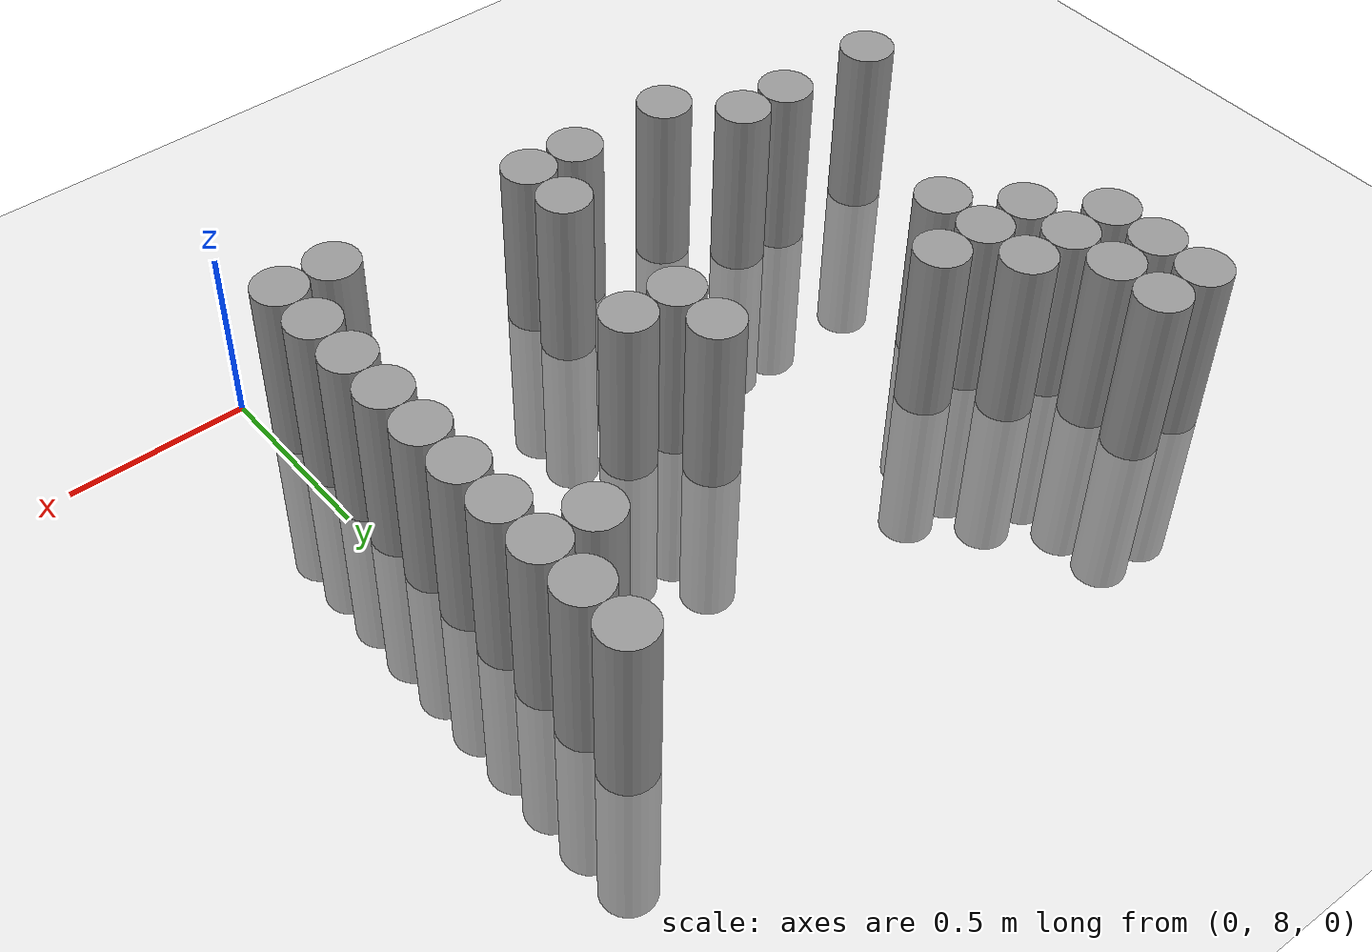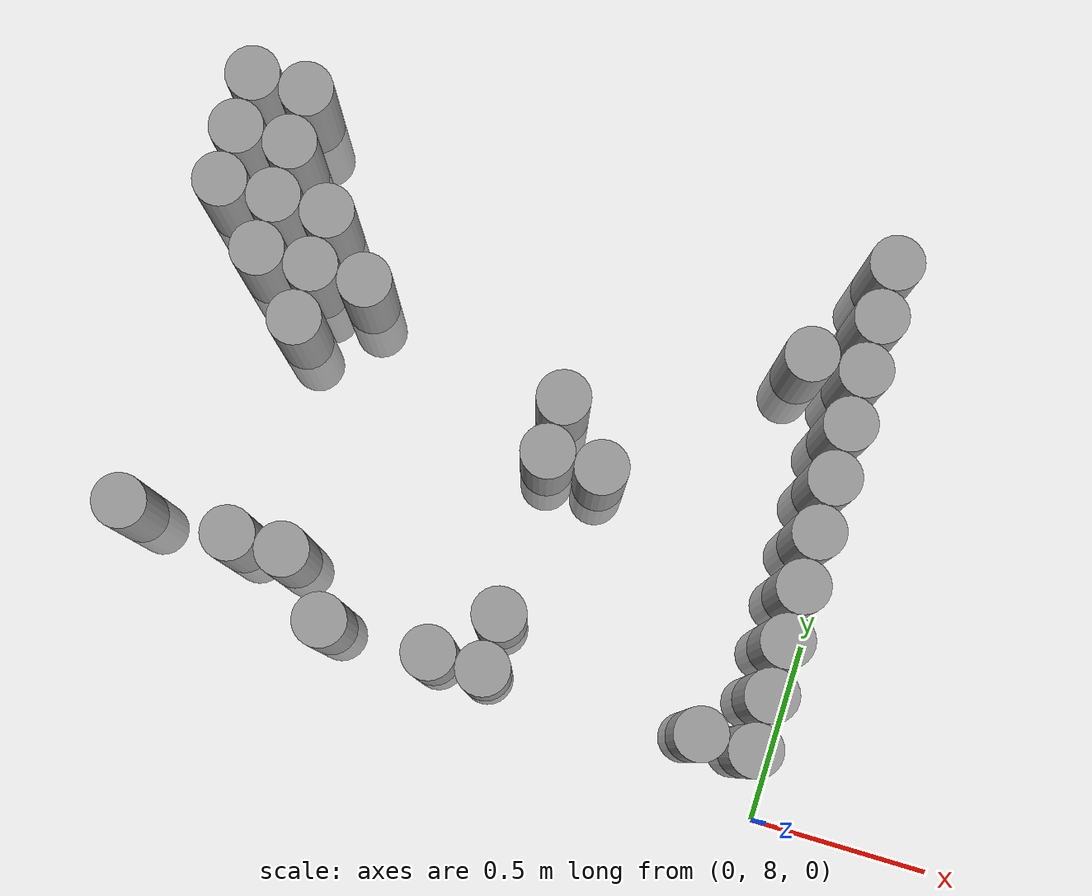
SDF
<sdf version="1.6">
 <world name="default">
  <model name="ground_plane">
   <static>1</static>
   <link name="link">
    <collision name="collision">
     <geometry><plane><normal>0 0 1</normal><size>100 100</size></plane></geometry>
     <surface><friction><ode><mu>100</mu><mu2>50</mu2></ode></friction></surface>
    </collision>
    <visual name="visual">
     <cast_shadows>0</cast_shadows>
     <geometry><plane><normal>0 0 1</normal><size>100 100</size></plane></geometry>
     <material>
      <script><uri>file://media/materials/scripts/gazebo.material</uri><name>Gazebo/Grey</name></script>
     </material>
    </visual>
   </link>
  </model>
  <model name="unit_cylinder_183">
   <pose>-1.875000 8.325000 0.000000 0.000000 0.000000 0.000000</pose>
   <link name="link">
    <inertial>
     <mass>1</mass>
     <inertia><ixx>0.145833</ixx><ixy>0</ixy><ixz>0</ixz><iyy>0.145833</iyy><iyz>0</iyz><izz>0.125</izz></inertia>
    </inertial>
    <collision name="collision">
     <geometry><cylinder><radius>0.075000</radius><length>1</length></cylinder></geometry>
    </collision>
    <visual name="visual">
     <geometry><cylinder><radius>0.075000</radius><length>1</length></cylinder></geometry>
     <material>
      <script><name>Gazebo/Grey</name><uri>file://media/materials/scripts/gazebo.material</uri></script>
     </material>
    </visual>
   </link>
  </model>
  <model name="unit_cylinder_184">
   <pose>-1.875000 9.225000 0.000000 0.000000 0.000000 0.000000</pose>
   <link name="link">
    <inertial>
     <mass>1</mass>
     <inertia><ixx>0.145833</ixx><ixy>0</ixy><ixz>0</ixz><iyy>0.145833</iyy><iyz>0</iyz><izz>0.125</izz></inertia>
    </inertial>
    <collision name="collision">
     <geometry><cylinder><radius>0.075000</radius><length>1</length></cylinder></geometry>
    </collision>
    <visual name="visual">
     <geometry><cylinder><radius>0.075000</radius><length>1</length></cylinder></geometry>
     <material>
      <script><name>Gazebo/Grey</name><uri>file://media/materials/scripts/gazebo.material</uri></script>
     </material>
    </visual>
   </link>
  </model>
  <model name="unit_cylinder_185">
   <pose>-1.875000 9.375000 0.000000 0.000000 0.000000 0.000000</pose>
   <link name="link">
    <inertial>
     <mass>1</mass>
     <inertia><ixx>0.145833</ixx><ixy>0</ixy><ixz>0</ixz><iyy>0.145833</iyy><iyz>0</iyz><izz>0.125</izz></inertia>
    </inertial>
    <collision name="collision">
     <geometry><cylinder><radius>0.075000</radius><length>1</length></cylinder></geometry>
    </collision>
    <visual name="visual">
     <geometry><cylinder><radius>0.075000</radius><length>1</length></cylinder></geometry>
     <material>
      <script><name>Gazebo/Grey</name><uri>file://media/materials/scripts/gazebo.material</uri></script>
     </material>
    </visual>
   </link>
  </model>
  <model name="unit_cylinder_186">
   <pose>-1.875000 9.525000 0.000000 0.000000 0.000000 0.000000</pose>
   <link name="link">
    <inertial>
     <mass>1</mass>
     <inertia><ixx>0.145833</ixx><ixy>0</ixy><ixz>0</ixz><iyy>0.145833</iyy><iyz>0</iyz><izz>0.125</izz></inertia>
    </inertial>
    <collision name="collision">
     <geometry><cylinder><radius>0.075000</radius><length>1</length></cylinder></geometry>
    </collision>
    <visual name="visual">
     <geometry><cylinder><radius>0.075000</radius><length>1</length></cylinder></geometry>
     <material>
      <script><name>Gazebo/Grey</name><uri>file://media/materials/scripts/gazebo.material</uri></script>
     </material>
    </visual>
   </link>
  </model>
  <model name="unit_cylinder_190">
   <pose>-1.725000 9.075000 0.000000 0.000000 0.000000 0.000000</pose>
   <link name="link">
    <inertial>
     <mass>1</mass>
     <inertia><ixx>0.145833</ixx><ixy>0</ixy><ixz>0</ixz><iyy>0.145833</iyy><iyz>0</iyz><izz>0.125</izz></inertia>
    </inertial>
    <collision name="collision">
     <geometry><cylinder><radius>0.075000</radius><length>1</length></cylinder></geometry>
    </collision>
    <visual name="visual">
     <geometry><cylinder><radius>0.075000</radius><length>1</length></cylinder></geometry>
     <material>
      <script><name>Gazebo/Grey</name><uri>file://media/materials/scripts/gazebo.material</uri></script>
     </material>
    </visual>
   </link>
  </model>
  <model name="unit_cylinder_191">
   <pose>-1.725000 9.225000 0.000000 0.000000 0.000000 0.000000</pose>
   <link name="link">
    <inertial>
     <mass>1</mass>
     <inertia><ixx>0.145833</ixx><ixy>0</ixy><ixz>0</ixz><iyy>0.145833</iyy><iyz>0</iyz><izz>0.125</izz></inertia>
    </inertial>
    <collision name="collision">
     <geometry><cylinder><radius>0.075000</radius><length>1</length></cylinder></geometry>
    </collision>
    <visual name="visual">
     <geometry><cylinder><radius>0.075000</radius><length>1</length></cylinder></geometry>
     <material>
      <script><name>Gazebo/Grey</name><uri>file://media/materials/scripts/gazebo.material</uri></script>
     </material>
    </visual>
   </link>
  </model>
  <model name="unit_cylinder_192">
   <pose>-1.725000 9.375000 0.000000 0.000000 0.000000 0.000000</pose>
   <link name="link">
    <inertial>
     <mass>1</mass>
     <inertia><ixx>0.145833</ixx><ixy>0</ixy><ixz>0</ixz><iyy>0.145833</iyy><iyz>0</iyz><izz>0.125</izz></inertia>
    </inertial>
    <collision name="collision">
     <geometry><cylinder><radius>0.075000</radius><length>1</length></cylinder></geometry>
    </collision>
    <visual name="visual">
     <geometry><cylinder><radius>0.075000</radius><length>1</length></cylinder></geometry>
     <material>
      <script><name>Gazebo/Grey</name><uri>file://media/materials/scripts/gazebo.material</uri></script>
     </material>
    </visual>
   </link>
  </model>
  <model name="unit_cylinder_193">
   <pose>-1.725000 9.525000 0.000000 0.000000 0.000000 0.000000</pose>
   <link name="link">
    <inertial>
     <mass>1</mass>
     <inertia><ixx>0.145833</ixx><ixy>0</ixy><ixz>0</ixz><iyy>0.145833</iyy><iyz>0</iyz><izz>0.125</izz></inertia>
    </inertial>
    <collision name="collision">
     <geometry><cylinder><radius>0.075000</radius><length>1</length></cylinder></geometry>
    </collision>
    <visual name="visual">
     <geometry><cylinder><radius>0.075000</radius><length>1</length></cylinder></geometry>
     <material>
      <script><name>Gazebo/Grey</name><uri>file://media/materials/scripts/gazebo.material</uri></script>
     </material>
    </visual>
   </link>
  </model>
  <model name="unit_cylinder_194">
   <pose>-1.575000 8.325000 0.000000 0.000000 0.000000 0.000000</pose>
   <link name="link">
    <inertial>
     <mass>1</mass>
     <inertia><ixx>0.145833</ixx><ixy>0</ixy><ixz>0</ixz><iyy>0.145833</iyy><iyz>0</iyz><izz>0.125</izz></inertia>
    </inertial>
    <collision name="collision">
     <geometry><cylinder><radius>0.075000</radius><length>1</length></cylinder></geometry>
    </collision>
    <visual name="visual">
     <geometry><cylinder><radius>0.075000</radius><length>1</length></cylinder></geometry>
     <material>
      <script><name>Gazebo/Grey</name><uri>file://media/materials/scripts/gazebo.material</uri></script>
     </material>
    </visual>
   </link>
  </model>
  <model name="unit_cylinder_195">
   <pose>-1.575000 8.925000 0.000000 0.000000 0.000000 0.000000</pose>
   <link name="link">
    <inertial>
     <mass>1</mass>
     <inertia><ixx>0.145833</ixx><ixy>0</ixy><ixz>0</ixz><iyy>0.145833</iyy><iyz>0</iyz><izz>0.125</izz></inertia>
    </inertial>
    <collision name="collision">
     <geometry><cylinder><radius>0.075000</radius><length>1</length></cylinder></geometry>
    </collision>
    <visual name="visual">
     <geometry><cylinder><radius>0.075000</radius><length>1</length></cylinder></geometry>
     <material>
      <script><name>Gazebo/Grey</name><uri>file://media/materials/scripts/gazebo.material</uri></script>
     </material>
    </visual>
   </link>
  </model>
  <model name="unit_cylinder_196">
   <pose>-1.575000 9.075000 0.000000 0.000000 0.000000 0.000000</pose>
   <link name="link">
    <inertial>
     <mass>1</mass>
     <inertia><ixx>0.145833</ixx><ixy>0</ixy><ixz>0</ixz><iyy>0.145833</iyy><iyz>0</iyz><izz>0.125</izz></inertia>
    </inertial>
    <collision name="collision">
     <geometry><cylinder><radius>0.075000</radius><length>1</length></cylinder></geometry>
    </collision>
    <visual name="visual">
     <geometry><cylinder><radius>0.075000</radius><length>1</length></cylinder></geometry>
     <material>
      <script><name>Gazebo/Grey</name><uri>file://media/materials/scripts/gazebo.material</uri></script>
     </material>
    </visual>
   </link>
  </model>
  <model name="unit_cylinder_197">
   <pose>-1.575000 9.225000 0.000000 0.000000 0.000000 0.000000</pose>
   <link name="link">
    <inertial>
     <mass>1</mass>
     <inertia><ixx>0.145833</ixx><ixy>0</ixy><ixz>0</ixz><iyy>0.145833</iyy><iyz>0</iyz><izz>0.125</izz></inertia>
    </inertial>
    <collision name="collision">
     <geometry><cylinder><radius>0.075000</radius><length>1</length></cylinder></geometry>
    </collision>
    <visual name="visual">
     <geometry><cylinder><radius>0.075000</radius><length>1</length></cylinder></geometry>
     <material>
      <script><name>Gazebo/Grey</name><uri>file://media/materials/scripts/gazebo.material</uri></script>
     </material>
    </visual>
   </link>
  </model>
  <model name="unit_cylinder_198">
   <pose>-1.425000 8.325000 0.000000 0.000000 0.000000 0.000000</pose>
   <link name="link">
    <inertial>
     <mass>1</mass>
     <inertia><ixx>0.145833</ixx><ixy>0</ixy><ixz>0</ixz><iyy>0.145833</iyy><iyz>0</iyz><izz>0.125</izz></inertia>
    </inertial>
    <collision name="collision">
     <geometry><cylinder><radius>0.075000</radius><length>1</length></cylinder></geometry>
    </collision>
    <visual name="visual">
     <geometry><cylinder><radius>0.075000</radius><length>1</length></cylinder></geometry>
     <material>
      <script><name>Gazebo/Grey</name><uri>file://media/materials/scripts/gazebo.material</uri></script>
     </material>
    </visual>
   </link>
  </model>
  <model name="unit_cylinder_199">
   <pose>-1.425000 9.075000 0.000000 0.000000 0.000000 0.000000</pose>
   <link name="link">
    <inertial>
     <mass>1</mass>
     <inertia><ixx>0.145833</ixx><ixy>0</ixy><ixz>0</ixz><iyy>0.145833</iyy><iyz>0</iyz><izz>0.125</izz></inertia>
    </inertial>
    <collision name="collision">
     <geometry><cylinder><radius>0.075000</radius><length>1</length></cylinder></geometry>
    </collision>
    <visual name="visual">
     <geometry><cylinder><radius>0.075000</radius><length>1</length></cylinder></geometry>
     <material>
      <script><name>Gazebo/Grey</name><uri>file://media/materials/scripts/gazebo.material</uri></script>
     </material>
    </visual>
   </link>
  </model>
  <model name="unit_cylinder_200">
   <pose>-1.275000 8.175000 0.000000 0.000000 0.000000 0.000000</pose>
   <link name="link">
    <inertial>
     <mass>1</mass>
     <inertia><ixx>0.145833</ixx><ixy>0</ixy><ixz>0</ixz><iyy>0.145833</iyy><iyz>0</iyz><izz>0.125</izz></inertia>
    </inertial>
    <collision name="collision">
     <geometry><cylinder><radius>0.075000</radius><length>1</length></cylinder></geometry>
    </collision>
    <visual name="visual">
     <geometry><cylinder><radius>0.075000</radius><length>1</length></cylinder></geometry>
     <material>
      <script><name>Gazebo/Grey</name><uri>file://media/materials/scripts/gazebo.material</uri></script>
     </material>
    </visual>
   </link>
  </model>
  <model name="unit_cylinder_204">
   <pose>-0.975000 8.175000 0.000000 0.000000 0.000000 0.000000</pose>
   <link name="link">
    <inertial>
     <mass>1</mass>
     <inertia><ixx>0.145833</ixx><ixy>0</ixy><ixz>0</ixz><iyy>0.145833</iyy><iyz>0</iyz><izz>0.125</izz></inertia>
    </inertial>
    <collision name="collision">
     <geometry><cylinder><radius>0.075000</radius><length>1</length></cylinder></geometry>
    </collision>
    <visual name="visual">
     <geometry><cylinder><radius>0.075000</radius><length>1</length></cylinder></geometry>
     <material>
      <script><name>Gazebo/Grey</name><uri>file://media/materials/scripts/gazebo.material</uri></script>
     </material>
    </visual>
   </link>
  </model>
  <model name="unit_cylinder_205">
   <pose>-0.825000 8.175000 0.000000 0.000000 0.000000 0.000000</pose>
   <link name="link">
    <inertial>
     <mass>1</mass>
     <inertia><ixx>0.145833</ixx><ixy>0</ixy><ixz>0</ixz><iyy>0.145833</iyy><iyz>0</iyz><izz>0.125</izz></inertia>
    </inertial>
    <collision name="collision">
     <geometry><cylinder><radius>0.075000</radius><length>1</length></cylinder></geometry>
    </collision>
    <visual name="visual">
     <geometry><cylinder><radius>0.075000</radius><length>1</length></cylinder></geometry>
     <material>
      <script><name>Gazebo/Grey</name><uri>file://media/materials/scripts/gazebo.material</uri></script>
     </material>
    </visual>
   </link>
  </model>
  <model name="unit_cylinder_206">
   <pose>-0.825000 8.325000 0.000000 0.000000 0.000000 0.000000</pose>
   <link name="link">
    <inertial>
     <mass>1</mass>
     <inertia><ixx>0.145833</ixx><ixy>0</ixy><ixz>0</ixz><iyy>0.145833</iyy><iyz>0</iyz><izz>0.125</izz></inertia>
    </inertial>
    <collision name="collision">
     <geometry><cylinder><radius>0.075000</radius><length>1</length></cylinder></geometry>
    </collision>
    <visual name="visual">
     <geometry><cylinder><radius>0.075000</radius><length>1</length></cylinder></geometry>
     <material>
      <script><name>Gazebo/Grey</name><uri>file://media/materials/scripts/gazebo.material</uri></script>
     </material>
    </visual>
   </link>
  </model>
  <model name="unit_cylinder_207">
   <pose>-0.825000 8.775000 0.000000 0.000000 0.000000 0.000000</pose>
   <link name="link">
    <inertial>
     <mass>1</mass>
     <inertia><ixx>0.145833</ixx><ixy>0</ixy><ixz>0</ixz><iyy>0.145833</iyy><iyz>0</iyz><izz>0.125</izz></inertia>
    </inertial>
    <collision name="collision">
     <geometry><cylinder><radius>0.075000</radius><length>1</length></cylinder></geometry>
    </collision>
    <visual name="visual">
     <geometry><cylinder><radius>0.075000</radius><length>1</length></cylinder></geometry>
     <material>
      <script><name>Gazebo/Grey</name><uri>file://media/materials/scripts/gazebo.material</uri></script>
     </material>
    </visual>
   </link>
  </model>
  <model name="unit_cylinder_208">
   <pose>-0.825000 8.925000 0.000000 0.000000 0.000000 0.000000</pose>
   <link name="link">
    <inertial>
     <mass>1</mass>
     <inertia><ixx>0.145833</ixx><ixy>0</ixy><ixz>0</ixz><iyy>0.145833</iyy><iyz>0</iyz><izz>0.125</izz></inertia>
    </inertial>
    <collision name="collision">
     <geometry><cylinder><radius>0.075000</radius><length>1</length></cylinder></geometry>
    </collision>
    <visual name="visual">
     <geometry><cylinder><radius>0.075000</radius><length>1</length></cylinder></geometry>
     <material>
      <script><name>Gazebo/Grey</name><uri>file://media/materials/scripts/gazebo.material</uri></script>
     </material>
    </visual>
   </link>
  </model>
  <model name="unit_cylinder_210">
   <pose>-0.675000 8.775000 0.000000 0.000000 0.000000 0.000000</pose>
   <link name="link">
    <inertial>
     <mass>1</mass>
     <inertia><ixx>0.145833</ixx><ixy>0</ixy><ixz>0</ixz><iyy>0.145833</iyy><iyz>0</iyz><izz>0.125</izz></inertia>
    </inertial>
    <collision name="collision">
     <geometry><cylinder><radius>0.075000</radius><length>1</length></cylinder></geometry>
    </collision>
    <visual name="visual">
     <geometry><cylinder><radius>0.075000</radius><length>1</length></cylinder></geometry>
     <material>
      <script><name>Gazebo/Grey</name><uri>file://media/materials/scripts/gazebo.material</uri></script>
     </material>
    </visual>
   </link>
  </model>
  <model name="unit_cylinder_228">
   <pose>-0.225000 8.175000 0.000000 0.000000 0.000000 0.000000</pose>
   <link name="link">
    <inertial>
     <mass>1</mass>
     <inertia><ixx>0.145833</ixx><ixy>0</ixy><ixz>0</ixz><iyy>0.145833</iyy><iyz>0</iyz><izz>0.125</izz></inertia>
    </inertial>
    <collision name="collision">
     <geometry><cylinder><radius>0.075000</radius><length>1</length></cylinder></geometry>
    </collision>
    <visual name="visual">
     <geometry><cylinder><radius>0.075000</radius><length>1</length></cylinder></geometry>
     <material>
      <script><name>Gazebo/Grey</name><uri>file://media/materials/scripts/gazebo.material</uri></script>
     </material>
    </visual>
   </link>
  </model>
  <model name="unit_cylinder_229">
   <pose>-0.225000 9.225000 0.000000 0.000000 0.000000 0.000000</pose>
   <link name="link">
    <inertial>
     <mass>1</mass>
     <inertia><ixx>0.145833</ixx><ixy>0</ixy><ixz>0</ixz><iyy>0.145833</iyy><iyz>0</iyz><izz>0.125</izz></inertia>
    </inertial>
    <collision name="collision">
     <geometry><cylinder><radius>0.075000</radius><length>1</length></cylinder></geometry>
    </collision>
    <visual name="visual">
     <geometry><cylinder><radius>0.075000</radius><length>1</length></cylinder></geometry>
     <material>
      <script><name>Gazebo/Grey</name><uri>file://media/materials/scripts/gazebo.material</uri></script>
     </material>
    </visual>
   </link>
  </model>
  <model name="unit_cylinder_250">
   <pose>-0.075000 8.175000 0.000000 0.000000 0.000000 0.000000</pose>
   <link name="link">
    <inertial>
     <mass>1</mass>
     <inertia><ixx>0.145833</ixx><ixy>0</ixy><ixz>0</ixz><iyy>0.145833</iyy><iyz>0</iyz><izz>0.125</izz></inertia>
    </inertial>
    <collision name="collision">
     <geometry><cylinder><radius>0.075000</radius><length>1</length></cylinder></geometry>
    </collision>
    <visual name="visual">
     <geometry><cylinder><radius>0.075000</radius><length>1</length></cylinder></geometry>
     <material>
      <script><name>Gazebo/Grey</name><uri>file://media/materials/scripts/gazebo.material</uri></script>
     </material>
    </visual>
   </link>
  </model>
  <model name="unit_cylinder_251">
   <pose>-0.075000 8.325000 0.000000 0.000000 0.000000 0.000000</pose>
   <link name="link">
    <inertial>
     <mass>1</mass>
     <inertia><ixx>0.145833</ixx><ixy>0</ixy><ixz>0</ixz><iyy>0.145833</iyy><iyz>0</iyz><izz>0.125</izz></inertia>
    </inertial>
    <collision name="collision">
     <geometry><cylinder><radius>0.075000</radius><length>1</length></cylinder></geometry>
    </collision>
    <visual name="visual">
     <geometry><cylinder><radius>0.075000</radius><length>1</length></cylinder></geometry>
     <material>
      <script><name>Gazebo/Grey</name><uri>file://media/materials/scripts/gazebo.material</uri></script>
     </material>
    </visual>
   </link>
  </model>
  <model name="unit_cylinder_252">
   <pose>-0.075000 8.475000 0.000000 0.000000 0.000000 0.000000</pose>
   <link name="link">
    <inertial>
     <mass>1</mass>
     <inertia><ixx>0.145833</ixx><ixy>0</ixy><ixz>0</ixz><iyy>0.145833</iyy><iyz>0</iyz><izz>0.125</izz></inertia>
    </inertial>
    <collision name="collision">
     <geometry><cylinder><radius>0.075000</radius><length>1</length></cylinder></geometry>
    </collision>
    <visual name="visual">
     <geometry><cylinder><radius>0.075000</radius><length>1</length></cylinder></geometry>
     <material>
      <script><name>Gazebo/Grey</name><uri>file://media/materials/scripts/gazebo.material</uri></script>
     </material>
    </visual>
   </link>
  </model>
  <model name="unit_cylinder_253">
   <pose>-0.075000 8.625000 0.000000 0.000000 0.000000 0.000000</pose>
   <link name="link">
    <inertial>
     <mass>1</mass>
     <inertia><ixx>0.145833</ixx><ixy>0</ixy><ixz>0</ixz><iyy>0.145833</iyy><iyz>0</iyz><izz>0.125</izz></inertia>
    </inertial>
    <collision name="collision">
     <geometry><cylinder><radius>0.075000</radius><length>1</length></cylinder></geometry>
    </collision>
    <visual name="visual">
     <geometry><cylinder><radius>0.075000</radius><length>1</length></cylinder></geometry>
     <material>
      <script><name>Gazebo/Grey</name><uri>file://media/materials/scripts/gazebo.material</uri></script>
     </material>
    </visual>
   </link>
  </model>
  <model name="unit_cylinder_254">
   <pose>-0.075000 8.775000 0.000000 0.000000 0.000000 0.000000</pose>
   <link name="link">
    <inertial>
     <mass>1</mass>
     <inertia><ixx>0.145833</ixx><ixy>0</ixy><ixz>0</ixz><iyy>0.145833</iyy><iyz>0</iyz><izz>0.125</izz></inertia>
    </inertial>
    <collision name="collision">
     <geometry><cylinder><radius>0.075000</radius><length>1</length></cylinder></geometry>
    </collision>
    <visual name="visual">
     <geometry><cylinder><radius>0.075000</radius><length>1</length></cylinder></geometry>
     <material>
      <script><name>Gazebo/Grey</name><uri>file://media/materials/scripts/gazebo.material</uri></script>
     </material>
    </visual>
   </link>
  </model>
  <model name="unit_cylinder_255">
   <pose>-0.075000 8.925000 0.000000 0.000000 0.000000 0.000000</pose>
   <link name="link">
    <inertial>
     <mass>1</mass>
     <inertia><ixx>0.145833</ixx><ixy>0</ixy><ixz>0</ixz><iyy>0.145833</iyy><iyz>0</iyz><izz>0.125</izz></inertia>
    </inertial>
    <collision name="collision">
     <geometry><cylinder><radius>0.075000</radius><length>1</length></cylinder></geometry>
    </collision>
    <visual name="visual">
     <geometry><cylinder><radius>0.075000</radius><length>1</length></cylinder></geometry>
     <material>
      <script><name>Gazebo/Grey</name><uri>file://media/materials/scripts/gazebo.material</uri></script>
     </material>
    </visual>
   </link>
  </model>
  <model name="unit_cylinder_256">
   <pose>-0.075000 9.075000 0.000000 0.000000 0.000000 0.000000</pose>
   <link name="link">
    <inertial>
     <mass>1</mass>
     <inertia><ixx>0.145833</ixx><ixy>0</ixy><ixz>0</ixz><iyy>0.145833</iyy><iyz>0</iyz><izz>0.125</izz></inertia>
    </inertial>
    <collision name="collision">
     <geometry><cylinder><radius>0.075000</radius><length>1</length></cylinder></geometry>
    </collision>
    <visual name="visual">
     <geometry><cylinder><radius>0.075000</radius><length>1</length></cylinder></geometry>
     <material>
      <script><name>Gazebo/Grey</name><uri>file://media/materials/scripts/gazebo.material</uri></script>
     </material>
    </visual>
   </link>
  </model>
  <model name="unit_cylinder_257">
   <pose>-0.075000 9.225000 0.000000 0.000000 0.000000 0.000000</pose>
   <link name="link">
    <inertial>
     <mass>1</mass>
     <inertia><ixx>0.145833</ixx><ixy>0</ixy><ixz>0</ixz><iyy>0.145833</iyy><iyz>0</iyz><izz>0.125</izz></inertia>
    </inertial>
    <collision name="collision">
     <geometry><cylinder><radius>0.075000</radius><length>1</length></cylinder></geometry>
    </collision>
    <visual name="visual">
     <geometry><cylinder><radius>0.075000</radius><length>1</length></cylinder></geometry>
     <material>
      <script><name>Gazebo/Grey</name><uri>file://media/materials/scripts/gazebo.material</uri></script>
     </material>
    </visual>
   </link>
  </model>
  <model name="unit_cylinder_258">
   <pose>-0.075000 9.375000 0.000000 0.000000 0.000000 0.000000</pose>
   <link name="link">
    <inertial>
     <mass>1</mass>
     <inertia><ixx>0.145833</ixx><ixy>0</ixy><ixz>0</ixz><iyy>0.145833</iyy><iyz>0</iyz><izz>0.125</izz></inertia>
    </inertial>
    <collision name="collision">
     <geometry><cylinder><radius>0.075000</radius><length>1</length></cylinder></geometry>
    </collision>
    <visual name="visual">
     <geometry><cylinder><radius>0.075000</radius><length>1</length></cylinder></geometry>
     <material>
      <script><name>Gazebo/Grey</name><uri>file://media/materials/scripts/gazebo.material</uri></script>
     </material>
    </visual>
   </link>
  </model>
  <model name="unit_cylinder_259">
   <pose>-0.075000 9.525000 0.000000 0.000000 0.000000 0.000000</pose>
   <link name="link">
    <inertial>
     <mass>1</mass>
     <inertia><ixx>0.145833</ixx><ixy>0</ixy><ixz>0</ixz><iyy>0.145833</iyy><iyz>0</iyz><izz>0.125</izz></inertia>
    </inertial>
    <collision name="collision">
     <geometry><cylinder><radius>0.075000</radius><length>1</length></cylinder></geometry>
    </collision>
    <visual name="visual">
     <geometry><cylinder><radius>0.075000</radius><length>1</length></cylinder></geometry>
     <material>
      <script><name>Gazebo/Grey</name><uri>file://media/materials/scripts/gazebo.material</uri></script>
     </material>
    </visual>
   </link>
  </model>
 </world>
</sdf>
